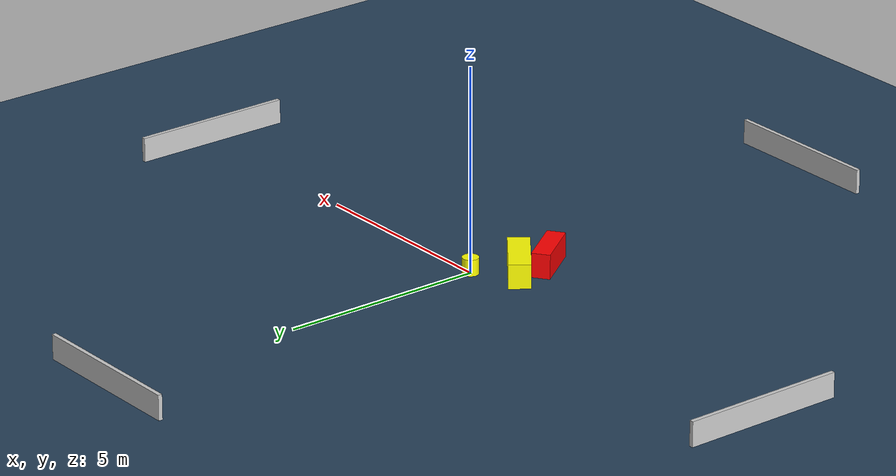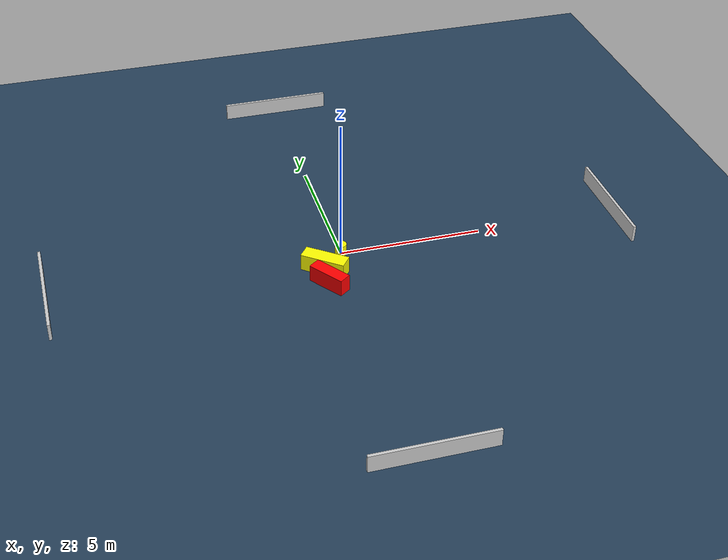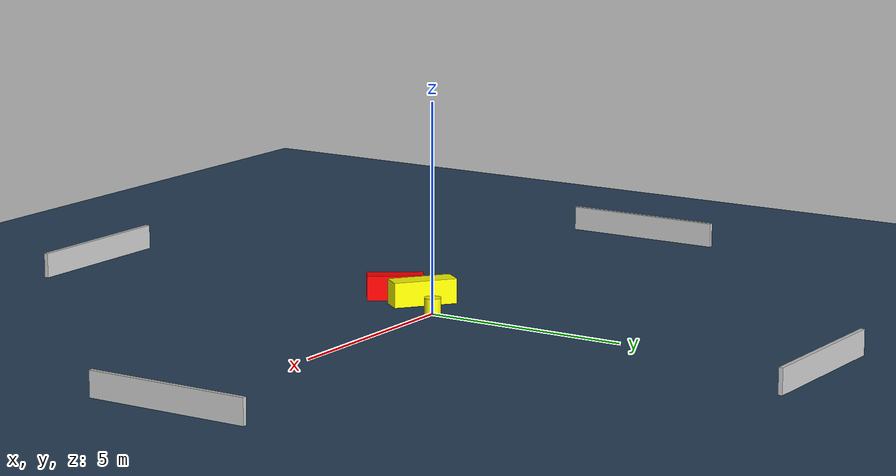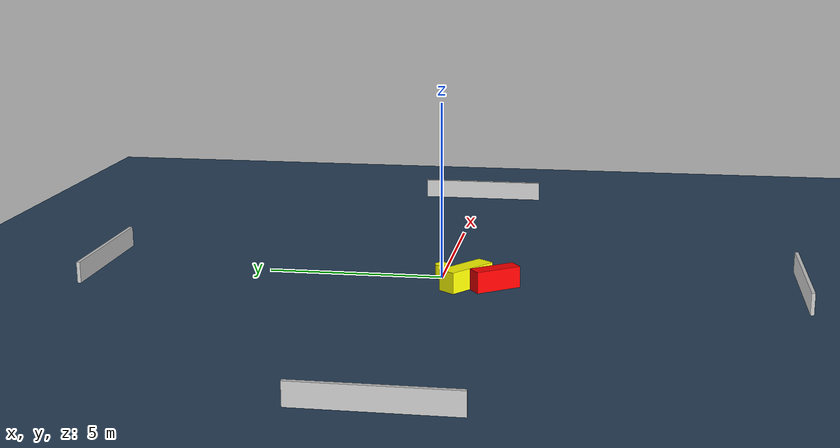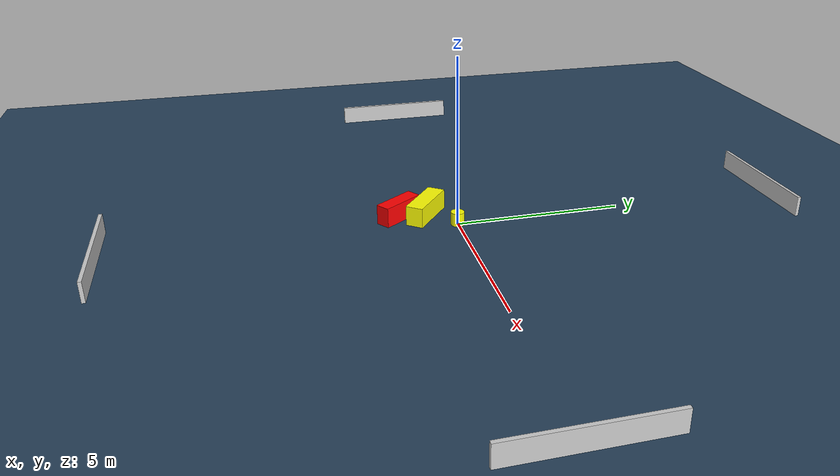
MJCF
<?xml version="1.0" ?>
<mujoco model="generated_environment">
  <option timestep="0.01" integrator="RK4" cone="elliptic"/>
  <default>
    <geom density="1"/>
  </default>
  <asset>
    <texture builtin="gradient" height="3072" name="skybox" rgb1="0.3 0.5 0.7" rgb2="0 0 0" type="skybox" width="512"/>
    <texture builtin="checker" height="300" name="groundplane" rgb1="0.2 0.3 0.4" rgb2="0.1 0.2 0.3" type="2d" width="300"/>
    <material name="groundplane" reflectance="0.2" texrepeat="5 5" texture="groundplane"/>
  </asset>
  <worldbody>
    <light dir="0 0 -1" directional="true" pos="0 0 1.5"/>
    <geom condim="3" friction="0.5 0.005 0.001" material="groundplane" name="floor" pos="0 0 0" size="0 0 0.05" type="plane"/>
    <body name="walls">
      <geom name="wall_1" condim="4" pos="-10.0 0.0 0.3" rgba="0.800000011920929 0.800000011920929 0.800000011920929 1.0" size="0.05 2.0 0.3" type="box"/>
      <geom name="wall_2" condim="4" pos="10.0 0.0 0.3" rgba="0.800000011920929 0.800000011920929 0.800000011920929 1.0" size="0.05 2.0 0.3" type="box"/>
      <geom name="wall_3" condim="4" pos="0.0 -10.0 0.3" rgba="0.800000011920929 0.800000011920929 0.800000011920929 1.0" size="2.0 0.05 0.3" type="box"/>
      <geom name="wall_4" condim="4" pos="0.0 10.0 0.3" rgba="0.800000011920929 0.800000011920929 0.800000011920929 1.0" size="2.0 0.05 0.3" type="box"/>
    </body>
    <body name="robot">
      <joint name="joint_x" type="slide" pos="0 0 0" axis="1 0 0"/>
      <joint name="joint_y" type="slide" pos="0 0 0" axis="0 1 0"/>
      <geom name="robot" type="cylinder" pos="0.0 0.0 0.2" size="0.2 0.2 0.0" mass="5.0" friction="1.0 0.005 0.0001" condim="4" rgba="1.0 1.0 0.0 1.0"/>
    </body>
    <body name="obstacle_1_movable">
      <geom name="obstacle_1_movable" condim="4" pos="-0.7712265862361214 -0.7925252038187229 0.3" euler="0 0 232.24602045845293" friction="0.0 0.005 0.001" rgba="1.0 1.0 0.0 1.0" size="0.2627067885390788 0.7774425953203798 0.3" type="box" mass="0.1"/>
      <joint type="free"/>
    </body>
    <body name="obstacle_2_static">
      <geom name="obstacle_2_static" condim="4" pos="-0.8281650415985908 -1.6012149652479037 0.3" euler="0 0 35.55172872232289" friction="0.0 0.005 0.001" rgba="1.0 0.0 0.0 1.0" size="0.2214907546073831 0.6730754104953174 0.3" type="box"/>
    </body>
  </worldbody>
  <actuator>
    <motor name="actuator_x" joint="joint_x" gear="1" ctrlrange="-1 1"/>
    <motor name="actuator_y" joint="joint_y" gear="1" ctrlrange="-1 1"/>
  </actuator>
</mujoco>
